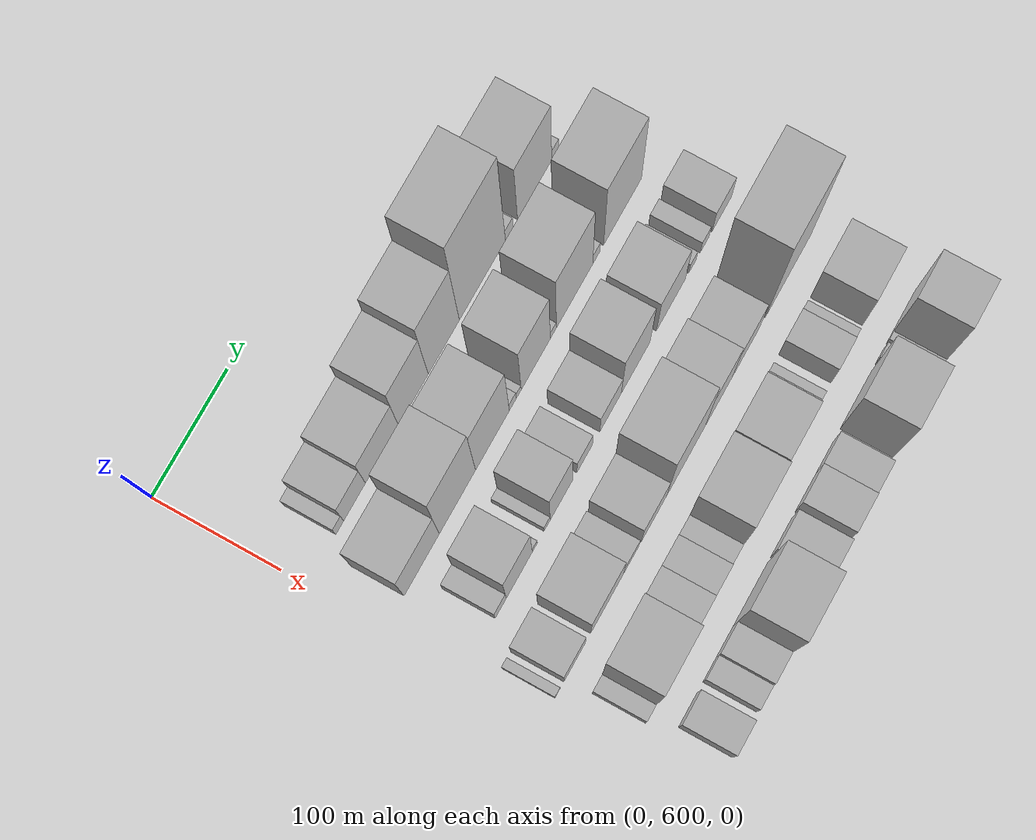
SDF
<sdf version="1.6">
 <world name="default">
  <model name="building_46">
   <static>1</static>
   <pose>100.0000 643.6625 0 0.000000 0.000000 0.000000</pose>
   <link name="link">
    <pose>0 0 12.00 0 0 0</pose>
    <collision name="collision"><geometry><box><size>40.0000 10.4989 24.0000</size></box></geometry></collision>
    <visual name="visual">
     <cast_shadows>0</cast_shadows>
     <geometry><box><size>40.0000 10.4989 24.0000</size></box></geometry>
     <material>
      <script>
       <uri>model://HANNAS_wall/materials/scripts</uri>
       <uri>model://HANNAS_wall/materials/textures</uri>
       <name>vrc/HANNAS_wall</name>
      </script>
     </material>
    </visual>
   </link>
  </model>
  <model name="building_47">
   <static>1</static>
   <pose>100.0000 663.4253 0 0.000000 0.000000 0.000000</pose>
   <link name="link">
    <pose>0 0 27.00 0 0 0</pose>
    <collision name="collision"><geometry><box><size>40.0000 29.0267 54.0000</size></box></geometry></collision>
    <visual name="visual">
     <cast_shadows>0</cast_shadows>
     <geometry><box><size>40.0000 29.0267 54.0000</size></box></geometry>
     <material>
      <script>
       <uri>model://HANNAS_wall/materials/scripts</uri>
       <uri>model://HANNAS_wall/materials/textures</uri>
       <name>vrc/HANNAS_wall</name>
      </script>
     </material>
    </visual>
   </link>
  </model>
  <model name="building_48">
   <static>1</static>
   <pose>100.0000 700.1703 0 0.000000 0.000000 0.000000</pose>
   <link name="link">
    <pose>0 0 37.50 0 0 0</pose>
    <collision name="collision"><geometry><box><size>40.0000 44.4634 75.0000</size></box></geometry></collision>
    <visual name="visual">
     <cast_shadows>0</cast_shadows>
     <geometry><box><size>40.0000 44.4634 75.0000</size></box></geometry>
     <material>
      <script>
       <uri>model://HANNAS_wall/materials/scripts</uri>
       <uri>model://HANNAS_wall/materials/textures</uri>
       <name>vrc/HANNAS_wall</name>
      </script>
     </material>
    </visual>
   </link>
  </model>
  <model name="building_49">
   <static>1</static>
   <pose>100.0000 742.5319 0 0.000000 0.000000 0.000000</pose>
   <link name="link">
    <pose>0 0 55.50 0 0 0</pose>
    <collision name="collision"><geometry><box><size>40.0000 40.2598 111.0000</size></box></geometry></collision>
    <visual name="visual">
     <cast_shadows>0</cast_shadows>
     <geometry><box><size>40.0000 40.2598 111.0000</size></box></geometry>
     <material>
      <script>
       <uri>model://HANNAS_wall/materials/scripts</uri>
       <uri>model://HANNAS_wall/materials/textures</uri>
       <name>vrc/HANNAS_wall</name>
      </script>
     </material>
    </visual>
   </link>
  </model>
  <model name="building_50">
   <static>1</static>
   <pose>100.0000 783.9385 0 0.000000 0.000000 0.000000</pose>
   <link name="link">
    <pose>0 0 70.50 0 0 0</pose>
    <collision name="collision"><geometry><box><size>40.0000 42.5534 141.0000</size></box></geometry></collision>
    <visual name="visual">
     <cast_shadows>0</cast_shadows>
     <geometry><box><size>40.0000 42.5534 141.0000</size></box></geometry>
     <material>
      <script>
       <uri>model://HANNAS_wall/materials/scripts</uri>
       <uri>model://HANNAS_wall/materials/textures</uri>
       <name>vrc/HANNAS_wall</name>
      </script>
     </material>
    </visual>
   </link>
  </model>
  <model name="building_51">
   <static>1</static>
   <pose>100.0000 836.9763 0 0.000000 0.000000 0.000000</pose>
   <link name="link">
    <pose>0 0 99.00 0 0 0</pose>
    <collision name="collision"><geometry><box><size>40.0000 63.5222 198.0000</size></box></geometry></collision>
    <visual name="visual">
     <cast_shadows>0</cast_shadows>
     <geometry><box><size>40.0000 63.5222 198.0000</size></box></geometry>
     <material>
      <script>
       <uri>model://HANNAS_wall/materials/scripts</uri>
       <uri>model://HANNAS_wall/materials/textures</uri>
       <name>vrc/HANNAS_wall</name>
      </script>
     </material>
    </visual>
   </link>
  </model>
  <model name="building_52">
   <static>1</static>
   <pose>100.0000 874.1453 0 0.000000 0.000000 0.000000</pose>
   <link name="link">
    <pose>0 0 12.00 0 0 0</pose>
    <collision name="collision"><geometry><box><size>40.0000 10.8160 24.0000</size></box></geometry></collision>
    <visual name="visual">
     <cast_shadows>0</cast_shadows>
     <geometry><box><size>40.0000 10.8160 24.0000</size></box></geometry>
     <material>
      <script>
       <uri>model://HANNAS_wall/materials/scripts</uri>
       <uri>model://HANNAS_wall/materials/textures</uri>
       <name>vrc/HANNAS_wall</name>
      </script>
     </material>
    </visual>
   </link>
  </model>
  <model name="building_53">
   <static>1</static>
   <pose>100.0000 909.4629 0 0.000000 0.000000 0.000000</pose>
   <link name="link">
    <pose>0 0 60.00 0 0 0</pose>
    <collision name="collision"><geometry><box><size>40.0000 47.8191 120.0000</size></box></geometry></collision>
    <visual name="visual">
     <cast_shadows>0</cast_shadows>
     <geometry><box><size>40.0000 47.8191 120.0000</size></box></geometry>
     <material>
      <script>
       <uri>model://HANNAS_wall/materials/scripts</uri>
       <uri>model://HANNAS_wall/materials/textures</uri>
       <name>vrc/HANNAS_wall</name>
      </script>
     </material>
    </visual>
   </link>
  </model>
  <model name="building_54">
   <static>1</static>
   <pose>100.0000 938.3288 0 0.000000 0.000000 0.000000</pose>
   <link name="link">
    <pose>0 0 10.50 0 0 0</pose>
    <collision name="collision"><geometry><box><size>40.0000 9.9126 21.0000</size></box></geometry></collision>
    <visual name="visual">
     <cast_shadows>0</cast_shadows>
     <geometry><box><size>40.0000 9.9126 21.0000</size></box></geometry>
     <material>
      <script>
       <uri>model://HANNAS_wall/materials/scripts</uri>
       <uri>model://HANNAS_wall/materials/textures</uri>
       <name>vrc/HANNAS_wall</name>
      </script>
     </material>
    </visual>
   </link>
  </model>
  <model name="building_100">
   <static>1</static>
   <pose>160.0000 648.5558 0 0.000000 0.000000 0.000000</pose>
   <link name="link">
    <pose>0 0 40.50 0 0 0</pose>
    <collision name="collision"><geometry><box><size>40.0000 47.1895 81.0000</size></box></geometry></collision>
    <visual name="visual">
     <cast_shadows>0</cast_shadows>
     <geometry><box><size>40.0000 47.1895 81.0000</size></box></geometry>
     <material>
      <script>
       <uri>model://HANNAS_wall/materials/scripts</uri>
       <uri>model://HANNAS_wall/materials/textures</uri>
       <name>vrc/HANNAS_wall</name>
      </script>
     </material>
    </visual>
   </link>
  </model>
  <model name="building_101">
   <static>1</static>
   <pose>160.0000 696.6822 0 0.000000 0.000000 0.000000</pose>
   <link name="link">
    <pose>0 0 70.50 0 0 0</pose>
    <collision name="collision"><geometry><box><size>40.0000 49.0633 141.0000</size></box></geometry></collision>
    <visual name="visual">
     <cast_shadows>0</cast_shadows>
     <geometry><box><size>40.0000 49.0633 141.0000</size></box></geometry>
     <material>
      <script>
       <uri>model://HANNAS_wall/materials/scripts</uri>
       <uri>model://HANNAS_wall/materials/textures</uri>
       <name>vrc/HANNAS_wall</name>
      </script>
     </material>
    </visual>
   </link>
  </model>
  <model name="building_102">
   <static>1</static>
   <pose>160.0000 744.2956 0 0.000000 0.000000 0.000000</pose>
   <link name="link">
    <pose>0 0 64.50 0 0 0</pose>
    <collision name="collision"><geometry><box><size>40.0000 46.1634 129.0000</size></box></geometry></collision>
    <visual name="visual">
     <cast_shadows>0</cast_shadows>
     <geometry><box><size>40.0000 46.1634 129.0000</size></box></geometry>
     <material>
      <script>
       <uri>model://HANNAS_wall/materials/scripts</uri>
       <uri>model://HANNAS_wall/materials/textures</uri>
       <name>vrc/HANNAS_wall</name>
      </script>
     </material>
    </visual>
   </link>
  </model>
  <model name="building_103">
   <static>1</static>
   <pose>160.0000 772.1907 0 0.000000 0.000000 0.000000</pose>
   <link name="link">
    <pose>0 0 10.50 0 0 0</pose>
    <collision name="collision"><geometry><box><size>40.0000 9.6269 21.0000</size></box></geometry></collision>
    <visual name="visual">
     <cast_shadows>0</cast_shadows>
     <geometry><box><size>40.0000 9.6269 21.0000</size></box></geometry>
     <material>
      <script>
       <uri>model://HANNAS_wall/materials/scripts</uri>
       <uri>model://HANNAS_wall/materials/textures</uri>
       <name>vrc/HANNAS_wall</name>
      </script>
     </material>
    </visual>
   </link>
  </model>
  <model name="building_104">
   <static>1</static>
   <pose>160.0000 780.3435 0 0.000000 0.000000 0.000000</pose>
   <link name="link">
    <pose>0 0 7.50 0 0 0</pose>
    <collision name="collision"><geometry><box><size>40.0000 6.6786 15.0000</size></box></geometry></collision>
    <visual name="visual">
     <cast_shadows>0</cast_shadows>
     <geometry><box><size>40.0000 6.6786 15.0000</size></box></geometry>
     <material>
      <script>
       <uri>model://HANNAS_wall/materials/scripts</uri>
       <uri>model://HANNAS_wall/materials/textures</uri>
       <name>vrc/HANNAS_wall</name>
      </script>
     </material>
    </visual>
   </link>
  </model>
  <model name="building_105">
   <static>1</static>
   <pose>160.0000 803.7086 0 0.000000 0.000000 0.000000</pose>
   <link name="link">
    <pose>0 0 60.00 0 0 0</pose>
    <collision name="collision"><geometry><box><size>40.0000 40.0517 120.0000</size></box></geometry></collision>
    <visual name="visual">
     <cast_shadows>0</cast_shadows>
     <geometry><box><size>40.0000 40.0517 120.0000</size></box></geometry>
     <material>
      <script>
       <uri>model://HANNAS_wall/materials/scripts</uri>
       <uri>model://HANNAS_wall/materials/textures</uri>
       <name>vrc/HANNAS_wall</name>
      </script>
     </material>
    </visual>
   </link>
  </model>
  <model name="building_106">
   <static>1</static>
   <pose>160.0000 827.9297 0 0.000000 0.000000 0.000000</pose>
   <link name="link">
    <pose>0 0 9.00 0 0 0</pose>
    <collision name="collision"><geometry><box><size>40.0000 8.3904 18.0000</size></box></geometry></collision>
    <visual name="visual">
     <cast_shadows>0</cast_shadows>
     <geometry><box><size>40.0000 8.3904 18.0000</size></box></geometry>
     <material>
      <script>
       <uri>model://HANNAS_wall/materials/scripts</uri>
       <uri>model://HANNAS_wall/materials/textures</uri>
       <name>vrc/HANNAS_wall</name>
      </script>
     </material>
    </visual>
   </link>
  </model>
  <model name="building_107">
   <static>1</static>
   <pose>160.0000 857.5117 0 0.000000 0.000000 0.000000</pose>
   <link name="link">
    <pose>0 0 67.50 0 0 0</pose>
    <collision name="collision"><geometry><box><size>40.0000 50.7736 135.0000</size></box></geometry></collision>
    <visual name="visual">
     <cast_shadows>0</cast_shadows>
     <geometry><box><size>40.0000 50.7736 135.0000</size></box></geometry>
     <material>
      <script>
       <uri>model://HANNAS_wall/materials/scripts</uri>
       <uri>model://HANNAS_wall/materials/textures</uri>
       <name>vrc/HANNAS_wall</name>
      </script>
     </material>
    </visual>
   </link>
  </model>
  <model name="building_108">
   <static>1</static>
   <pose>160.0000 888.0864 0 0.000000 0.000000 0.000000</pose>
   <link name="link">
    <pose>0 0 12.00 0 0 0</pose>
    <collision name="collision"><geometry><box><size>40.0000 10.3757 24.0000</size></box></geometry></collision>
    <visual name="visual">
     <cast_shadows>0</cast_shadows>
     <geometry><box><size>40.0000 10.3757 24.0000</size></box></geometry>
     <material>
      <script>
       <uri>model://HANNAS_wall/materials/scripts</uri>
       <uri>model://HANNAS_wall/materials/textures</uri>
       <name>vrc/HANNAS_wall</name>
      </script>
     </material>
    </visual>
   </link>
  </model>
  <model name="building_109">
   <static>1</static>
   <pose>160.0000 925.0277 0 0.000000 0.000000 0.000000</pose>
   <link name="link">
    <pose>0 0 69.00 0 0 0</pose>
    <collision name="collision"><geometry><box><size>40.0000 53.5069 138.0000</size></box></geometry></collision>
    <visual name="visual">
     <cast_shadows>0</cast_shadows>
     <geometry><box><size>40.0000 53.5069 138.0000</size></box></geometry>
     <material>
      <script>
       <uri>model://HANNAS_wall/materials/scripts</uri>
       <uri>model://HANNAS_wall/materials/textures</uri>
       <name>vrc/HANNAS_wall</name>
      </script>
     </material>
    </visual>
   </link>
  </model>
  <model name="building_155">
   <static>1</static>
   <pose>220.0000 648.8908 0 0.000000 0.000000 0.000000</pose>
   <link name="link">
    <pose>0 0 15.00 0 0 0</pose>
    <collision name="collision"><geometry><box><size>40.0000 15.1073 30.0000</size></box></geometry></collision>
    <visual name="visual">
     <cast_shadows>0</cast_shadows>
     <geometry><box><size>40.0000 15.1073 30.0000</size></box></geometry>
     <material>
      <script>
       <uri>model://HANNAS_wall/materials/scripts</uri>
       <uri>model://HANNAS_wall/materials/textures</uri>
       <name>vrc/HANNAS_wall</name>
      </script>
     </material>
    </visual>
   </link>
  </model>
  <model name="building_156">
   <static>1</static>
   <pose>220.0000 673.9979 0 0.000000 0.000000 0.000000</pose>
   <link name="link">
    <pose>0 0 46.50 0 0 0</pose>
    <collision name="collision"><geometry><box><size>40.0000 35.1070 93.0000</size></box></geometry></collision>
    <visual name="visual">
     <cast_shadows>0</cast_shadows>
     <geometry><box><size>40.0000 35.1070 93.0000</size></box></geometry>
     <material>
      <script>
       <uri>model://HANNAS_wall/materials/scripts</uri>
       <uri>model://HANNAS_wall/materials/textures</uri>
       <name>vrc/HANNAS_wall</name>
      </script>
     </material>
    </visual>
   </link>
  </model>
  <model name="building_157">
   <static>1</static>
   <pose>220.0000 695.0636 0 0.000000 0.000000 0.000000</pose>
   <link name="link">
    <pose>0 0 7.50 0 0 0</pose>
    <collision name="collision"><geometry><box><size>40.0000 7.0245 15.0000</size></box></geometry></collision>
    <visual name="visual">
     <cast_shadows>0</cast_shadows>
     <geometry><box><size>40.0000 7.0245 15.0000</size></box></geometry>
     <material>
      <script>
       <uri>model://HANNAS_wall/materials/scripts</uri>
       <uri>model://HANNAS_wall/materials/textures</uri>
       <name>vrc/HANNAS_wall</name>
      </script>
     </material>
    </visual>
   </link>
  </model>
  <model name="building_158">
   <static>1</static>
   <pose>220.0000 711.7538 0 0.000000 0.000000 0.000000</pose>
   <link name="link">
    <pose>0 0 9.00 0 0 0</pose>
    <collision name="collision"><geometry><box><size>40.0000 8.3558 18.0000</size></box></geometry></collision>
    <visual name="visual">
     <cast_shadows>0</cast_shadows>
     <geometry><box><size>40.0000 8.3558 18.0000</size></box></geometry>
     <material>
      <script>
       <uri>model://HANNAS_wall/materials/scripts</uri>
       <uri>model://HANNAS_wall/materials/textures</uri>
       <name>vrc/HANNAS_wall</name>
      </script>
     </material>
    </visual>
   </link>
  </model>
  <model name="building_159">
   <static>1</static>
   <pose>220.0000 731.2872 0 0.000000 0.000000 0.000000</pose>
   <link name="link">
    <pose>0 0 46.50 0 0 0</pose>
    <collision name="collision"><geometry><box><size>40.0000 30.7111 93.0000</size></box></geometry></collision>
    <visual name="visual">
     <cast_shadows>0</cast_shadows>
     <geometry><box><size>40.0000 30.7111 93.0000</size></box></geometry>
     <material>
      <script>
       <uri>model://HANNAS_wall/materials/scripts</uri>
       <uri>model://HANNAS_wall/materials/textures</uri>
       <name>vrc/HANNAS_wall</name>
      </script>
     </material>
    </visual>
   </link>
  </model>
  <model name="building_160">
   <static>1</static>
   <pose>220.0000 763.4761 0 0.000000 0.000000 0.000000</pose>
   <link name="link">
    <pose>0 0 19.50 0 0 0</pose>
    <collision name="collision"><geometry><box><size>40.0000 21.6666 39.0000</size></box></geometry></collision>
    <visual name="visual">
     <cast_shadows>0</cast_shadows>
     <geometry><box><size>40.0000 21.6666 39.0000</size></box></geometry>
     <material>
      <script>
       <uri>model://HANNAS_wall/materials/scripts</uri>
       <uri>model://HANNAS_wall/materials/textures</uri>
       <name>vrc/HANNAS_wall</name>
      </script>
     </material>
    </visual>
   </link>
  </model>
  <model name="building_161">
   <static>1</static>
   <pose>220.0000 799.2620 0 0.000000 0.000000 0.000000</pose>
   <link name="link">
    <pose>0 0 25.50 0 0 0</pose>
    <collision name="collision"><geometry><box><size>40.0000 29.9052 51.0000</size></box></geometry></collision>
    <visual name="visual">
     <cast_shadows>0</cast_shadows>
     <geometry><box><size>40.0000 29.9052 51.0000</size></box></geometry>
     <material>
      <script>
       <uri>model://HANNAS_wall/materials/scripts</uri>
       <uri>model://HANNAS_wall/materials/textures</uri>
       <name>vrc/HANNAS_wall</name>
      </script>
     </material>
    </visual>
   </link>
  </model>
  <model name="building_162">
   <static>1</static>
   <pose>220.0000 834.2801 0 0.000000 0.000000 0.000000</pose>
   <link name="link">
    <pose>0 0 52.50 0 0 0</pose>
    <collision name="collision"><geometry><box><size>40.0000 40.1310 105.0000</size></box></geometry></collision>
    <visual name="visual">
     <cast_shadows>0</cast_shadows>
     <geometry><box><size>40.0000 40.1310 105.0000</size></box></geometry>
     <material>
      <script>
       <uri>model://HANNAS_wall/materials/scripts</uri>
       <uri>model://HANNAS_wall/materials/textures</uri>
       <name>vrc/HANNAS_wall</name>
      </script>
     </material>
    </visual>
   </link>
  </model>
  <model name="building_163">
   <static>1</static>
   <pose>220.0000 883.7405 0 0.000000 0.000000 0.000000</pose>
   <link name="link">
    <pose>0 0 40.50 0 0 0</pose>
    <collision name="collision"><geometry><box><size>40.0000 40.7898 81.0000</size></box></geometry></collision>
    <visual name="visual">
     <cast_shadows>0</cast_shadows>
     <geometry><box><size>40.0000 40.7898 81.0000</size></box></geometry>
     <material>
      <script>
       <uri>model://HANNAS_wall/materials/scripts</uri>
       <uri>model://HANNAS_wall/materials/textures</uri>
       <name>vrc/HANNAS_wall</name>
      </script>
     </material>
    </visual>
   </link>
  </model>
  <model name="building_164">
   <static>1</static>
   <pose>220.0000 914.3615 0 0.000000 0.000000 0.000000</pose>
   <link name="link">
    <pose>0 0 12.00 0 0 0</pose>
    <collision name="collision"><geometry><box><size>40.0000 10.4520 24.0000</size></box></geometry></collision>
    <visual name="visual">
     <cast_shadows>0</cast_shadows>
     <geometry><box><size>40.0000 10.4520 24.0000</size></box></geometry>
     <material>
      <script>
       <uri>model://HANNAS_wall/materials/scripts</uri>
       <uri>model://HANNAS_wall/materials/textures</uri>
       <name>vrc/HANNAS_wall</name>
      </script>
     </material>
    </visual>
   </link>
  </model>
  <model name="building_165">
   <static>1</static>
   <pose>220.0000 931.9524 0 0.000000 0.000000 0.000000</pose>
   <link name="link">
    <pose>0 0 13.50 0 0 0</pose>
    <collision name="collision"><geometry><box><size>40.0000 12.7300 27.0000</size></box></geometry></collision>
    <visual name="visual">
     <cast_shadows>0</cast_shadows>
     <geometry><box><size>40.0000 12.7300 27.0000</size></box></geometry>
     <material>
      <script>
       <uri>model://HANNAS_wall/materials/scripts</uri>
       <uri>model://HANNAS_wall/materials/textures</uri>
       <name>vrc/HANNAS_wall</name>
      </script>
     </material>
    </visual>
   </link>
  </model>
  <model name="building_166">
   <static>1</static>
   <pose>220.0000 956.3400 0 0.000000 0.000000 0.000000</pose>
   <link name="link">
    <pose>0 0 24.00 0 0 0</pose>
    <collision name="collision"><geometry><box><size>40.0000 28.0451 48.0000</size></box></geometry></collision>
    <visual name="visual">
     <cast_shadows>0</cast_shadows>
     <geometry><box><size>40.0000 28.0451 48.0000</size></box></geometry>
     <material>
      <script>
       <uri>model://HANNAS_wall/materials/scripts</uri>
       <uri>model://HANNAS_wall/materials/textures</uri>
       <name>vrc/HANNAS_wall</name>
      </script>
     </material>
    </visual>
   </link>
  </model>
  <model name="building_208">
   <static>1</static>
   <pose>280.0000 618.3624 0 0.000000 0.000000 0.000000</pose>
   <link name="link">
    <pose>0 0 7.50 0 0 0</pose>
    <collision name="collision"><geometry><box><size>40.0000 7.2251 15.0000</size></box></geometry></collision>
    <visual name="visual">
     <cast_shadows>0</cast_shadows>
     <geometry><box><size>40.0000 7.2251 15.0000</size></box></geometry>
     <material>
      <script>
       <uri>model://HANNAS_wall/materials/scripts</uri>
       <uri>model://HANNAS_wall/materials/textures</uri>
       <name>vrc/HANNAS_wall</name>
      </script>
     </material>
    </visual>
   </link>
  </model>
  <model name="building_209">
   <static>1</static>
   <pose>280.0000 641.5969 0 0.000000 0.000000 0.000000</pose>
   <link name="link">
    <pose>0 0 25.50 0 0 0</pose>
    <collision name="collision"><geometry><box><size>40.0000 29.2439 51.0000</size></box></geometry></collision>
    <visual name="visual">
     <cast_shadows>0</cast_shadows>
     <geometry><box><size>40.0000 29.2439 51.0000</size></box></geometry>
     <material>
      <script>
       <uri>model://HANNAS_wall/materials/scripts</uri>
       <uri>model://HANNAS_wall/materials/textures</uri>
       <name>vrc/HANNAS_wall</name>
      </script>
     </material>
    </visual>
   </link>
  </model>
  <model name="building_210">
   <static>1</static>
   <pose>280.0000 685.6264 0 0.000000 0.000000 0.000000</pose>
   <link name="link">
    <pose>0 0 37.50 0 0 0</pose>
    <collision name="collision"><geometry><box><size>40.0000 44.8151 75.0000</size></box></geometry></collision>
    <visual name="visual">
     <cast_shadows>0</cast_shadows>
     <geometry><box><size>40.0000 44.8151 75.0000</size></box></geometry>
     <material>
      <script>
       <uri>model://HANNAS_wall/materials/scripts</uri>
       <uri>model://HANNAS_wall/materials/textures</uri>
       <name>vrc/HANNAS_wall</name>
      </script>
     </material>
    </visual>
   </link>
  </model>
  <model name="building_211">
   <static>1</static>
   <pose>280.0000 718.6467 0 0.000000 0.000000 0.000000</pose>
   <link name="link">
    <pose>0 0 18.00 0 0 0</pose>
    <collision name="collision"><geometry><box><size>40.0000 21.2255 36.0000</size></box></geometry></collision>
    <visual name="visual">
     <cast_shadows>0</cast_shadows>
     <geometry><box><size>40.0000 21.2255 36.0000</size></box></geometry>
     <material>
      <script>
       <uri>model://HANNAS_wall/materials/scripts</uri>
       <uri>model://HANNAS_wall/materials/textures</uri>
       <name>vrc/HANNAS_wall</name>
      </script>
     </material>
    </visual>
   </link>
  </model>
  <model name="building_212">
   <static>1</static>
   <pose>280.0000 749.8232 0 0.000000 0.000000 0.000000</pose>
   <link name="link">
    <pose>0 0 33.00 0 0 0</pose>
    <collision name="collision"><geometry><box><size>40.0000 35.1274 66.0000</size></box></geometry></collision>
    <visual name="visual">
     <cast_shadows>0</cast_shadows>
     <geometry><box><size>40.0000 35.1274 66.0000</size></box></geometry>
     <material>
      <script>
       <uri>model://HANNAS_wall/materials/scripts</uri>
       <uri>model://HANNAS_wall/materials/textures</uri>
       <name>vrc/HANNAS_wall</name>
      </script>
     </material>
    </visual>
   </link>
  </model>
  <model name="building_213">
   <static>1</static>
   <pose>280.0000 794.4838 0 0.000000 0.000000 0.000000</pose>
   <link name="link">
    <pose>0 0 72.00 0 0 0</pose>
    <collision name="collision"><geometry><box><size>40.0000 54.1939 144.0000</size></box></geometry></collision>
    <visual name="visual">
     <cast_shadows>0</cast_shadows>
     <geometry><box><size>40.0000 54.1939 144.0000</size></box></geometry>
     <material>
      <script>
       <uri>model://HANNAS_wall/materials/scripts</uri>
       <uri>model://HANNAS_wall/materials/textures</uri>
       <name>vrc/HANNAS_wall</name>
      </script>
     </material>
    </visual>
   </link>
  </model>
  <model name="building_214">
   <static>1</static>
   <pose>280.0000 840.7557 0 0.000000 0.000000 0.000000</pose>
   <link name="link">
    <pose>0 0 49.50 0 0 0</pose>
    <collision name="collision"><geometry><box><size>40.0000 38.3498 99.0000</size></box></geometry></collision>
    <visual name="visual">
     <cast_shadows>0</cast_shadows>
     <geometry><box><size>40.0000 38.3498 99.0000</size></box></geometry>
     <material>
      <script>
       <uri>model://HANNAS_wall/materials/scripts</uri>
       <uri>model://HANNAS_wall/materials/textures</uri>
       <name>vrc/HANNAS_wall</name>
      </script>
     </material>
    </visual>
   </link>
  </model>
  <model name="building_215">
   <static>1</static>
   <pose>280.0000 879.0337 0 0.000000 0.000000 0.000000</pose>
   <link name="link">
    <pose>0 0 37.50 0 0 0</pose>
    <collision name="collision"><geometry><box><size>40.0000 38.2063 75.0000</size></box></geometry></collision>
    <visual name="visual">
     <cast_shadows>0</cast_shadows>
     <geometry><box><size>40.0000 38.2063 75.0000</size></box></geometry>
     <material>
      <script>
       <uri>model://HANNAS_wall/materials/scripts</uri>
       <uri>model://HANNAS_wall/materials/textures</uri>
       <name>vrc/HANNAS_wall</name>
      </script>
     </material>
    </visual>
   </link>
  </model>
  <model name="building_216">
   <static>1</static>
   <pose>280.0000 939.8768 0 0.000000 0.000000 0.000000</pose>
   <link name="link">
    <pose>0 0 94.50 0 0 0</pose>
    <collision name="collision"><geometry><box><size>40.0000 65.4798 189.0000</size></box></geometry></collision>
    <visual name="visual">
     <cast_shadows>0</cast_shadows>
     <geometry><box><size>40.0000 65.4798 189.0000</size></box></geometry>
     <material>
      <script>
       <uri>model://HANNAS_wall/materials/scripts</uri>
       <uri>model://HANNAS_wall/materials/textures</uri>
       <name>vrc/HANNAS_wall</name>
      </script>
     </material>
    </visual>
   </link>
  </model>
  <model name="building_257">
   <static>1</static>
   <pose>340.0000 635.6698 0 0.000000 0.000000 0.000000</pose>
   <link name="link">
    <pose>0 0 13.50 0 0 0</pose>
    <collision name="collision"><geometry><box><size>40.0000 12.6443 27.0000</size></box></geometry></collision>
    <visual name="visual">
     <cast_shadows>0</cast_shadows>
     <geometry><box><size>40.0000 12.6443 27.0000</size></box></geometry>
     <material>
      <script>
       <uri>model://HANNAS_wall/materials/scripts</uri>
       <uri>model://HANNAS_wall/materials/textures</uri>
       <name>vrc/HANNAS_wall</name>
      </script>
     </material>
    </visual>
   </link>
  </model>
  <model name="building_258">
   <static>1</static>
   <pose>340.0000 666.0648 0 0.000000 0.000000 0.000000</pose>
   <link name="link">
    <pose>0 0 73.50 0 0 0</pose>
    <collision name="collision"><geometry><box><size>40.0000 48.1456 147.0000</size></box></geometry></collision>
    <visual name="visual">
     <cast_shadows>0</cast_shadows>
     <geometry><box><size>40.0000 48.1456 147.0000</size></box></geometry>
     <material>
      <script>
       <uri>model://HANNAS_wall/materials/scripts</uri>
       <uri>model://HANNAS_wall/materials/textures</uri>
       <name>vrc/HANNAS_wall</name>
      </script>
     </material>
    </visual>
   </link>
  </model>
  <model name="building_259">
   <static>1</static>
   <pose>340.0000 705.1653 0 0.000000 0.000000 0.000000</pose>
   <link name="link">
    <pose>0 0 25.50 0 0 0</pose>
    <collision name="collision"><geometry><box><size>40.0000 30.0555 51.0000</size></box></geometry></collision>
    <visual name="visual">
     <cast_shadows>0</cast_shadows>
     <geometry><box><size>40.0000 30.0555 51.0000</size></box></geometry>
     <material>
      <script>
       <uri>model://HANNAS_wall/materials/scripts</uri>
       <uri>model://HANNAS_wall/materials/textures</uri>
       <name>vrc/HANNAS_wall</name>
      </script>
     </material>
    </visual>
   </link>
  </model>
  <model name="building_260">
   <static>1</static>
   <pose>340.0000 732.0147 0 0.000000 0.000000 0.000000</pose>
   <link name="link">
    <pose>0 0 22.50 0 0 0</pose>
    <collision name="collision"><geometry><box><size>40.0000 23.6432 45.0000</size></box></geometry></collision>
    <visual name="visual">
     <cast_shadows>0</cast_shadows>
     <geometry><box><size>40.0000 23.6432 45.0000</size></box></geometry>
     <material>
      <script>
       <uri>model://HANNAS_wall/materials/scripts</uri>
       <uri>model://HANNAS_wall/materials/textures</uri>
       <name>vrc/HANNAS_wall</name>
      </script>
     </material>
    </visual>
   </link>
  </model>
  <model name="building_261">
   <static>1</static>
   <pose>340.0000 752.1522 0 0.000000 0.000000 0.000000</pose>
   <link name="link">
    <pose>0 0 15.00 0 0 0</pose>
    <collision name="collision"><geometry><box><size>40.0000 16.6318 30.0000</size></box></geometry></collision>
    <visual name="visual">
     <cast_shadows>0</cast_shadows>
     <geometry><box><size>40.0000 16.6318 30.0000</size></box></geometry>
     <material>
      <script>
       <uri>model://HANNAS_wall/materials/scripts</uri>
       <uri>model://HANNAS_wall/materials/textures</uri>
       <name>vrc/HANNAS_wall</name>
      </script>
     </material>
    </visual>
   </link>
  </model>
  <model name="building_262">
   <static>1</static>
   <pose>340.0000 783.7943 0 0.000000 0.000000 0.000000</pose>
   <link name="link">
    <pose>0 0 60.00 0 0 0</pose>
    <collision name="collision"><geometry><box><size>40.0000 46.6525 120.0000</size></box></geometry></collision>
    <visual name="visual">
     <cast_shadows>0</cast_shadows>
     <geometry><box><size>40.0000 46.6525 120.0000</size></box></geometry>
     <material>
      <script>
       <uri>model://HANNAS_wall/materials/scripts</uri>
       <uri>model://HANNAS_wall/materials/textures</uri>
       <name>vrc/HANNAS_wall</name>
      </script>
     </material>
    </visual>
   </link>
  </model>
  <model name="building_263">
   <static>1</static>
   <pose>340.0000 811.5741 0 0.000000 0.000000 0.000000</pose>
   <link name="link">
    <pose>0 0 10.50 0 0 0</pose>
    <collision name="collision"><geometry><box><size>40.0000 8.9072 21.0000</size></box></geometry></collision>
    <visual name="visual">
     <cast_shadows>0</cast_shadows>
     <geometry><box><size>40.0000 8.9072 21.0000</size></box></geometry>
     <material>
      <script>
       <uri>model://HANNAS_wall/materials/scripts</uri>
       <uri>model://HANNAS_wall/materials/textures</uri>
       <name>vrc/HANNAS_wall</name>
      </script>
     </material>
    </visual>
   </link>
  </model>
  <model name="building_264">
   <static>1</static>
   <pose>340.0000 837.7428 0 0.000000 0.000000 0.000000</pose>
   <link name="link">
    <pose>0 0 37.50 0 0 0</pose>
    <collision name="collision"><geometry><box><size>40.0000 43.4301 75.0000</size></box></geometry></collision>
    <visual name="visual">
     <cast_shadows>0</cast_shadows>
     <geometry><box><size>40.0000 43.4301 75.0000</size></box></geometry>
     <material>
      <script>
       <uri>model://HANNAS_wall/materials/scripts</uri>
       <uri>model://HANNAS_wall/materials/textures</uri>
       <name>vrc/HANNAS_wall</name>
      </script>
     </material>
    </visual>
   </link>
  </model>
  <model name="building_265">
   <static>1</static>
   <pose>340.0000 865.3891 0 0.000000 0.000000 0.000000</pose>
   <link name="link">
    <pose>0 0 12.00 0 0 0</pose>
    <collision name="collision"><geometry><box><size>40.0000 11.8626 24.0000</size></box></geometry></collision>
    <visual name="visual">
     <cast_shadows>0</cast_shadows>
     <geometry><box><size>40.0000 11.8626 24.0000</size></box></geometry>
     <material>
      <script>
       <uri>model://HANNAS_wall/materials/scripts</uri>
       <uri>model://HANNAS_wall/materials/textures</uri>
       <name>vrc/HANNAS_wall</name>
      </script>
     </material>
    </visual>
   </link>
  </model>
  <model name="building_266">
   <static>1</static>
   <pose>340.0000 875.2438 0 0.000000 0.000000 0.000000</pose>
   <link name="link">
    <pose>0 0 9.00 0 0 0</pose>
    <collision name="collision"><geometry><box><size>40.0000 7.8468 18.0000</size></box></geometry></collision>
    <visual name="visual">
     <cast_shadows>0</cast_shadows>
     <geometry><box><size>40.0000 7.8468 18.0000</size></box></geometry>
     <material>
      <script>
       <uri>model://HANNAS_wall/materials/scripts</uri>
       <uri>model://HANNAS_wall/materials/textures</uri>
       <name>vrc/HANNAS_wall</name>
      </script>
     </material>
    </visual>
   </link>
  </model>
  <model name="building_267">
   <static>1</static>
   <pose>340.0000 901.4614 0 0.000000 0.000000 0.000000</pose>
   <link name="link">
    <pose>0 0 24.00 0 0 0</pose>
    <collision name="collision"><geometry><box><size>40.0000 24.5882 48.0000</size></box></geometry></collision>
    <visual name="visual">
     <cast_shadows>0</cast_shadows>
     <geometry><box><size>40.0000 24.5882 48.0000</size></box></geometry>
     <material>
      <script>
       <uri>model://HANNAS_wall/materials/scripts</uri>
       <uri>model://HANNAS_wall/materials/textures</uri>
       <name>vrc/HANNAS_wall</name>
      </script>
     </material>
    </visual>
   </link>
  </model>
  <model name="building_268">
   <static>1</static>
   <pose>340.0000 919.6227 0 0.000000 0.000000 0.000000</pose>
   <link name="link">
    <pose>0 0 13.50 0 0 0</pose>
    <collision name="collision"><geometry><box><size>40.0000 11.7345 27.0000</size></box></geometry></collision>
    <visual name="visual">
     <cast_shadows>0</cast_shadows>
     <geometry><box><size>40.0000 11.7345 27.0000</size></box></geometry>
     <material>
      <script>
       <uri>model://HANNAS_wall/materials/scripts</uri>
       <uri>model://HANNAS_wall/materials/textures</uri>
       <name>vrc/HANNAS_wall</name>
      </script>
     </material>
    </visual>
   </link>
  </model>
  <model name="building_269">
   <static>1</static>
   <pose>340.0000 954.7763 0 0.000000 0.000000 0.000000</pose>
   <link name="link">
    <pose>0 0 37.50 0 0 0</pose>
    <collision name="collision"><geometry><box><size>40.0000 40.5725 75.0000</size></box></geometry></collision>
    <visual name="visual">
     <cast_shadows>0</cast_shadows>
     <geometry><box><size>40.0000 40.5725 75.0000</size></box></geometry>
     <material>
      <script>
       <uri>model://HANNAS_wall/materials/scripts</uri>
       <uri>model://HANNAS_wall/materials/textures</uri>
       <name>vrc/HANNAS_wall</name>
      </script>
     </material>
    </visual>
   </link>
  </model>
  <model name="building_310">
   <static>1</static>
   <pose>400.0000 650.3619 0 0.000000 0.000000 0.000000</pose>
   <link name="link">
    <pose>0 0 24.00 0 0 0</pose>
    <collision name="collision"><geometry><box><size>40.0000 25.7290 48.0000</size></box></geometry></collision>
    <visual name="visual">
     <cast_shadows>0</cast_shadows>
     <geometry><box><size>40.0000 25.7290 48.0000</size></box></geometry>
     <material>
      <script>
       <uri>model://HANNAS_wall/materials/scripts</uri>
       <uri>model://HANNAS_wall/materials/textures</uri>
       <name>vrc/HANNAS_wall</name>
      </script>
     </material>
    </visual>
   </link>
  </model>
  <model name="building_311">
   <static>1</static>
   <pose>400.0000 680.3060 0 0.000000 0.000000 0.000000</pose>
   <link name="link">
    <pose>0 0 16.50 0 0 0</pose>
    <collision name="collision"><geometry><box><size>40.0000 18.1593 33.0000</size></box></geometry></collision>
    <visual name="visual">
     <cast_shadows>0</cast_shadows>
     <geometry><box><size>40.0000 18.1593 33.0000</size></box></geometry>
     <material>
      <script>
       <uri>model://HANNAS_wall/materials/scripts</uri>
       <uri>model://HANNAS_wall/materials/textures</uri>
       <name>vrc/HANNAS_wall</name>
      </script>
     </material>
    </visual>
   </link>
  </model>
  <model name="building_312">
   <static>1</static>
   <pose>400.0000 701.1854 0 0.000000 0.000000 0.000000</pose>
   <link name="link">
    <pose>0 0 22.50 0 0 0</pose>
    <collision name="collision"><geometry><box><size>40.0000 23.5993 45.0000</size></box></geometry></collision>
    <visual name="visual">
     <cast_shadows>0</cast_shadows>
     <geometry><box><size>40.0000 23.5993 45.0000</size></box></geometry>
     <material>
      <script>
       <uri>model://HANNAS_wall/materials/scripts</uri>
       <uri>model://HANNAS_wall/materials/textures</uri>
       <name>vrc/HANNAS_wall</name>
      </script>
     </material>
    </visual>
   </link>
  </model>
  <model name="building_313">
   <static>1</static>
   <pose>400.0000 737.1682 0 0.000000 0.000000 0.000000</pose>
   <link name="link">
    <pose>0 0 67.50 0 0 0</pose>
    <collision name="collision"><geometry><box><size>40.0000 48.3664 135.0000</size></box></geometry></collision>
    <visual name="visual">
     <cast_shadows>0</cast_shadows>
     <geometry><box><size>40.0000 48.3664 135.0000</size></box></geometry>
     <material>
      <script>
       <uri>model://HANNAS_wall/materials/scripts</uri>
       <uri>model://HANNAS_wall/materials/textures</uri>
       <name>vrc/HANNAS_wall</name>
      </script>
     </material>
    </visual>
   </link>
  </model>
  <model name="building_314">
   <static>1</static>
   <pose>400.0000 780.1746 0 0.000000 0.000000 0.000000</pose>
   <link name="link">
    <pose>0 0 25.50 0 0 0</pose>
    <collision name="collision"><geometry><box><size>40.0000 29.6465 51.0000</size></box></geometry></collision>
    <visual name="visual">
     <cast_shadows>0</cast_shadows>
     <geometry><box><size>40.0000 29.6465 51.0000</size></box></geometry>
     <material>
      <script>
       <uri>model://HANNAS_wall/materials/scripts</uri>
       <uri>model://HANNAS_wall/materials/textures</uri>
       <name>vrc/HANNAS_wall</name>
      </script>
     </material>
    </visual>
   </link>
  </model>
  <model name="building_315">
   <static>1</static>
   <pose>400.0000 814.5651 0 0.000000 0.000000 0.000000</pose>
   <link name="link">
    <pose>0 0 25.50 0 0 0</pose>
    <collision name="collision"><geometry><box><size>40.0000 29.1344 51.0000</size></box></geometry></collision>
    <visual name="visual">
     <cast_shadows>0</cast_shadows>
     <geometry><box><size>40.0000 29.1344 51.0000</size></box></geometry>
     <material>
      <script>
       <uri>model://HANNAS_wall/materials/scripts</uri>
       <uri>model://HANNAS_wall/materials/textures</uri>
       <name>vrc/HANNAS_wall</name>
      </script>
     </material>
    </visual>
   </link>
  </model>
  <model name="building_316">
   <static>1</static>
   <pose>400.0000 841.7471 0 0.000000 0.000000 0.000000</pose>
   <link name="link">
    <pose>0 0 22.50 0 0 0</pose>
    <collision name="collision"><geometry><box><size>40.0000 25.2297 45.0000</size></box></geometry></collision>
    <visual name="visual">
     <cast_shadows>0</cast_shadows>
     <geometry><box><size>40.0000 25.2297 45.0000</size></box></geometry>
     <material>
      <script>
       <uri>model://HANNAS_wall/materials/scripts</uri>
       <uri>model://HANNAS_wall/materials/textures</uri>
       <name>vrc/HANNAS_wall</name>
      </script>
     </material>
    </visual>
   </link>
  </model>
  <model name="building_317">
   <static>1</static>
   <pose>400.0000 887.0380 0 0.000000 0.000000 0.000000</pose>
   <link name="link">
    <pose>0 0 58.50 0 0 0</pose>
    <collision name="collision"><geometry><box><size>40.0000 45.3521 117.0000</size></box></geometry></collision>
    <visual name="visual">
     <cast_shadows>0</cast_shadows>
     <geometry><box><size>40.0000 45.3521 117.0000</size></box></geometry>
     <material>
      <script>
       <uri>model://HANNAS_wall/materials/scripts</uri>
       <uri>model://HANNAS_wall/materials/textures</uri>
       <name>vrc/HANNAS_wall</name>
      </script>
     </material>
    </visual>
   </link>
  </model>
  <model name="building_318">
   <static>1</static>
   <pose>400.0000 920.4887 0 0.000000 0.000000 0.000000</pose>
   <link name="link">
    <pose>0 0 13.50 0 0 0</pose>
    <collision name="collision"><geometry><box><size>40.0000 11.5492 27.0000</size></box></geometry></collision>
    <visual name="visual">
     <cast_shadows>0</cast_shadows>
     <geometry><box><size>40.0000 11.5492 27.0000</size></box></geometry>
     <material>
      <script>
       <uri>model://HANNAS_wall/materials/scripts</uri>
       <uri>model://HANNAS_wall/materials/textures</uri>
       <name>vrc/HANNAS_wall</name>
      </script>
     </material>
    </visual>
   </link>
  </model>
  <model name="building_319">
   <static>1</static>
   <pose>400.0000 934.4655 0 0.000000 0.000000 0.000000</pose>
   <link name="link">
    <pose>0 0 7.50 0 0 0</pose>
    <collision name="collision"><geometry><box><size>40.0000 6.4044 15.0000</size></box></geometry></collision>
    <visual name="visual">
     <cast_shadows>0</cast_shadows>
     <geometry><box><size>40.0000 6.4044 15.0000</size></box></geometry>
     <material>
      <script>
       <uri>model://HANNAS_wall/materials/scripts</uri>
       <uri>model://HANNAS_wall/materials/textures</uri>
       <name>vrc/HANNAS_wall</name>
      </script>
     </material>
    </visual>
   </link>
  </model>
  <model name="building_320">
   <static>1</static>
   <pose>400.0000 955.6166 0 0.000000 0.000000 0.000000</pose>
   <link name="link">
    <pose>0 0 57.00 0 0 0</pose>
    <collision name="collision"><geometry><box><size>40.0000 35.8978 114.0000</size></box></geometry></collision>
    <visual name="visual">
     <cast_shadows>0</cast_shadows>
     <geometry><box><size>40.0000 35.8978 114.0000</size></box></geometry>
     <material>
      <script>
       <uri>model://HANNAS_wall/materials/scripts</uri>
       <uri>model://HANNAS_wall/materials/textures</uri>
       <name>vrc/HANNAS_wall</name>
      </script>
     </material>
    </visual>
   </link>
  </model>
 </world>
</sdf>
